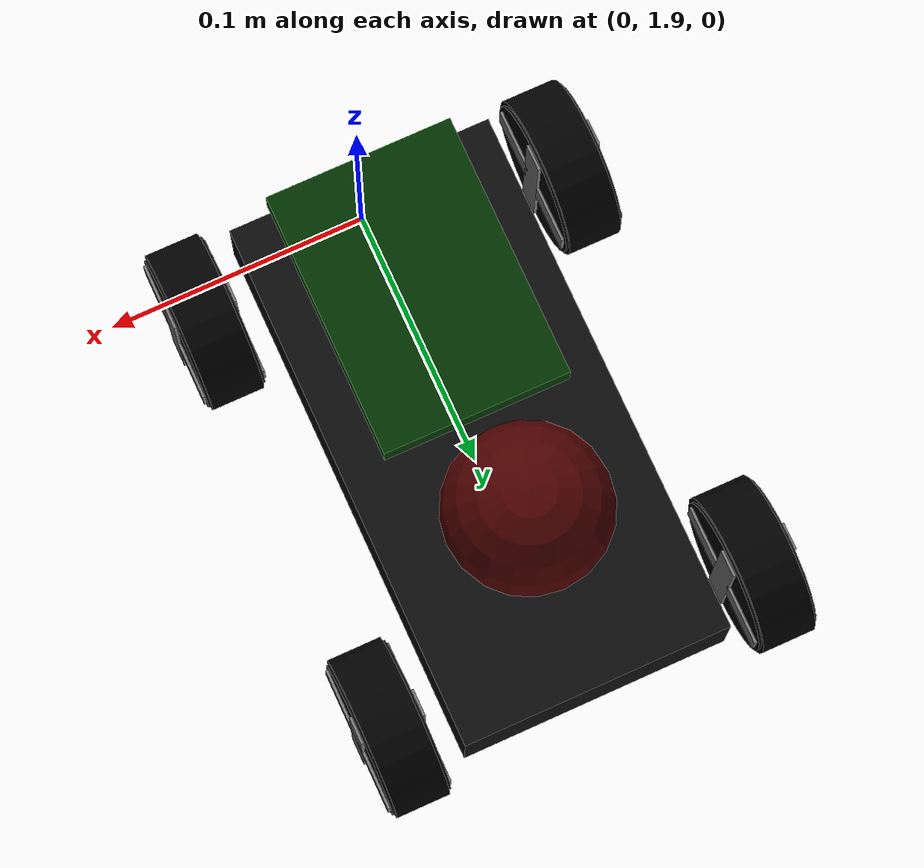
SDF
<sdf version="1.9">
 <world name="trial_1_world">
  <physics name="default_physics" default="false" type="ode">
   <max_step_size>0.0040000000000000001</max_step_size>
   <real_time_factor>1</real_time_factor>
   <real_time_update_rate>250</real_time_update_rate>
  </physics>
  <scene>
   <sky><clouds><speed>12</speed></clouds></sky>
   <ambient>0.4 0.4 0.4 1</ambient>
   <background>0.7 0.7 0.7 1</background>
   <shadows>true</shadows>
  </scene>
  <gravity>0 0 -9.8</gravity>
  <magnetic_field>6e-06 2.3e-05 -4.2e-05</magnetic_field>
  <atmosphere type="adiabatic"/>
  <model name="rover">
   <pose>-0 2 0.04 -0 0 1.57</pose>
   <link name="base_link">
    <inertial>
     <mass>0.20000000000000001</mass>
     <inertia><ixx>0.01</ixx><iyy>0.01</iyy><izz>0.01</izz><ixy>0</ixy><ixz>0</ixz><iyz>0</iyz></inertia>
    </inertial>
    <visual name="chassis_visual">
     <geometry><box><size>0.2 0.1 0.03</size></box></geometry>
     <material><diffuse>0.05 0.05 0.05 1</diffuse><specular>0.8 0.8 0.8 1</specular></material>
    </visual>
    <collision name="chassis_collision"><geometry><box><size>0.2 0.1 0.03</size></box></geometry></collision>
    <visual name="computer_visual">
     <pose>-0.05 0 0.03 0 0 0</pose>
     <geometry><box><size>0.1 0.07 0.01</size></box></geometry>
     <material><diffuse>0 0.2 0 1</diffuse><specular>0.8 0.8 0.8 1</specular></material>
    </visual>
    <collision name="computer_collision">
     <pose>-0.05 0 0.03 0 0 0</pose>
     <geometry><box><size>0.1 0.07 0.01</size></box></geometry>
    </collision>
   </link>
   <link name="front_left">
    <pose>0.08 0.07 -0.01 -1.5707 0 0</pose>
    <inertial>
     <mass>0.0050000000000000001</mass>
     <inertia><ixx>0.0001</ixx><iyy>0.0001</iyy><izz>0.0001</izz><ixy>0</ixy><ixz>0</ixz><iyz>0</iyz></inertia>
    </inertial>
    <collision name="collision">
     <geometry><cylinder><radius>0.029999999999999999</radius><length>0.02</length></cylinder></geometry>
    </collision>
    <visual name="tire">
     <geometry><cylinder><radius>0.029999999999999999</radius><length>0.02</length></cylinder></geometry>
     <material><diffuse>0 0 0 1</diffuse><specular>0.2 0.2 0.2 1</specular></material>
    </visual>
    <visual name="wheel">
     <geometry>
      <cylinder><radius>0.028499999999999998</radius><length>0.021999999999999999</length></cylinder>
     </geometry>
     <material><diffuse>0.02 0.02 0.02 1</diffuse><specular>0.8 0.8 0.8 1</specular></material>
    </visual>
    <visual name="wheel_line">
     <geometry><box><size>0.053 0.01 0.024</size></box></geometry>
     <material><diffuse>0.5 0.5 0.5 1</diffuse><specular>0.8 0.8 0.8 1</specular></material>
    </visual>
    <visual name="wheel_line2">
     <geometry><box><size>0.01 0.053 0.024</size></box></geometry>
     <material><diffuse>0.5 0.5 0.5 1</diffuse><specular>0.8 0.8 0.8 1</specular></material>
    </visual>
   </link>
   <joint name="front_left_joint" type="revolute">
    <child>front_left</child>
    <parent>base_link</parent>
    <axis>
     <xyz>0 0 1</xyz>
     <limit>
      <lower>-10000000000000000</lower>
      <upper>10000000000000000</upper>
      <effort>inf</effort>
      <velocity>inf</velocity>
      <stiffness>100000000</stiffness>
      <dissipation>1</dissipation>
     </limit>
     <dynamics>
      <spring_reference>0</spring_reference>
      <spring_stiffness>0</spring_stiffness>
      <damping>0.01</damping>
      <friction>0.01</friction>
     </dynamics>
    </axis>
   </joint>
   <link name="front_right">
    <pose>0.08 -0.07 -0.01 -1.5707 0 0</pose>
    <inertial>
     <mass>0.0050000000000000001</mass>
     <inertia><ixx>0.0001</ixx><iyy>0.0001</iyy><izz>0.0001</izz><ixy>0</ixy><ixz>0</ixz><iyz>0</iyz></inertia>
    </inertial>
    <collision name="collision">
     <geometry><cylinder><radius>0.029999999999999999</radius><length>0.02</length></cylinder></geometry>
    </collision>
    <visual name="tire">
     <geometry><cylinder><radius>0.029999999999999999</radius><length>0.02</length></cylinder></geometry>
     <material><diffuse>0 0 0 1</diffuse><specular>0.2 0.2 0.2 1</specular></material>
    </visual>
    <visual name="wheel">
     <geometry>
      <cylinder><radius>0.028499999999999998</radius><length>0.021999999999999999</length></cylinder>
     </geometry>
     <material><diffuse>0.02 0.02 0.02 1</diffuse><specular>0.8 0.8 0.8 1</specular></material>
    </visual>
    <visual name="wheel_line">
     <geometry><box><size>0.053 0.01 0.024</size></box></geometry>
     <material><diffuse>0.5 0.5 0.5 1</diffuse><specular>0.8 0.8 0.8 1</specular></material>
    </visual>
    <visual name="wheel_line2">
     <geometry><box><size>0.01 0.053 0.024</size></box></geometry>
     <material><diffuse>0.5 0.5 0.5 1</diffuse><specular>0.8 0.8 0.8 1</specular></material>
    </visual>
   </link>
   <joint name="front_right_joint" type="revolute">
    <child>front_right</child>
    <parent>base_link</parent>
    <axis>
     <xyz>0 0 1</xyz>
     <limit>
      <lower>-10000000000000000</lower>
      <upper>10000000000000000</upper>
      <effort>inf</effort>
      <velocity>inf</velocity>
      <stiffness>100000000</stiffness>
      <dissipation>1</dissipation>
     </limit>
     <dynamics>
      <spring_reference>0</spring_reference>
      <spring_stiffness>0</spring_stiffness>
      <damping>0.01</damping>
      <friction>0.01</friction>
     </dynamics>
    </axis>
   </joint>
   <link name="rear_left">
    <pose>-0.08 0.07 -0.01 -1.5707 0 0</pose>
    <inertial>
     <mass>0.0050000000000000001</mass>
     <inertia><ixx>0.0001</ixx><iyy>0.0001</iyy><izz>0.0001</izz><ixy>0</ixy><ixz>0</ixz><iyz>0</iyz></inertia>
    </inertial>
    <collision name="collision">
     <geometry><cylinder><radius>0.029999999999999999</radius><length>0.02</length></cylinder></geometry>
    </collision>
    <visual name="tire">
     <geometry><cylinder><radius>0.029999999999999999</radius><length>0.02</length></cylinder></geometry>
     <material><diffuse>0 0 0 1</diffuse><specular>0.2 0.2 0.2 1</specular></material>
    </visual>
    <visual name="wheel">
     <geometry>
      <cylinder><radius>0.028499999999999998</radius><length>0.021999999999999999</length></cylinder>
     </geometry>
     <material><diffuse>0.02 0.02 0.02 1</diffuse><specular>0.8 0.8 0.8 1</specular></material>
    </visual>
    <visual name="wheel_line">
     <geometry><box><size>0.053 0.01 0.024</size></box></geometry>
     <material><diffuse>0.5 0.5 0.5 1</diffuse><specular>0.8 0.8 0.8 1</specular></material>
    </visual>
    <visual name="wheel_line2">
     <geometry><box><size>0.01 0.053 0.024</size></box></geometry>
     <material><diffuse>0.5 0.5 0.5 1</diffuse><specular>0.8 0.8 0.8 1</specular></material>
    </visual>
   </link>
   <joint name="rear_left_joint" type="revolute">
    <child>rear_left</child>
    <parent>base_link</parent>
    <axis>
     <xyz>0 0 1</xyz>
     <limit>
      <lower>-10000000000000000</lower>
      <upper>10000000000000000</upper>
      <effort>inf</effort>
      <velocity>inf</velocity>
      <stiffness>100000000</stiffness>
      <dissipation>1</dissipation>
     </limit>
     <dynamics>
      <spring_reference>0</spring_reference>
      <spring_stiffness>0</spring_stiffness>
      <damping>0.01</damping>
      <friction>0.01</friction>
     </dynamics>
    </axis>
   </joint>
   <link name="rear_right">
    <pose>-0.08 -0.07 -0.01 -1.5707 0 0</pose>
    <inertial>
     <mass>0.0050000000000000001</mass>
     <inertia><ixx>0.0001</ixx><iyy>0.0001</iyy><izz>0.0001</izz><ixy>0</ixy><ixz>0</ixz><iyz>0</iyz></inertia>
    </inertial>
    <collision name="collision">
     <geometry><cylinder><radius>0.029999999999999999</radius><length>0.02</length></cylinder></geometry>
    </collision>
    <visual name="tire">
     <geometry><cylinder><radius>0.029999999999999999</radius><length>0.02</length></cylinder></geometry>
     <material><diffuse>0 0 0 1</diffuse><specular>0.2 0.2 0.2 1</specular></material>
    </visual>
    <visual name="wheel">
     <geometry>
      <cylinder><radius>0.028499999999999998</radius><length>0.021999999999999999</length></cylinder>
     </geometry>
     <material><diffuse>0.02 0.02 0.02 1</diffuse><specular>0.8 0.8 0.8 1</specular></material>
    </visual>
    <visual name="wheel_line">
     <geometry><box><size>0.053 0.01 0.024</size></box></geometry>
     <material><diffuse>0.5 0.5 0.5 1</diffuse><specular>0.8 0.8 0.8 1</specular></material>
    </visual>
    <visual name="wheel_line2">
     <geometry><box><size>0.01 0.053 0.024</size></box></geometry>
     <material><diffuse>0.5 0.5 0.5 1</diffuse><specular>0.8 0.8 0.8 1</specular></material>
    </visual>
   </link>
   <joint name="rear_right_joint" type="revolute">
    <child>rear_right</child>
    <parent>base_link</parent>
    <axis>
     <xyz>0 0 1</xyz>
     <limit>
      <lower>-10000000000000000</lower>
      <upper>10000000000000000</upper>
      <effort>inf</effort>
      <velocity>inf</velocity>
      <stiffness>100000000</stiffness>
      <dissipation>1</dissipation>
     </limit>
     <dynamics>
      <spring_reference>0</spring_reference>
      <spring_stiffness>0</spring_stiffness>
      <damping>0.01</damping>
      <friction>0.01</friction>
     </dynamics>
    </axis>
   </joint>
   <include><uri>model://red_ball</uri></include>
   <joint name="red_ball_joint" type="fixed">
    <pose>-0.04 0 0.02 0 -0 0</pose>
    <child>red_ball::link</child>
    <parent>base_link</parent>
   </joint>
   <plugin name="p3d" filename="libgazebo_ros_p3d.so">
    <robotNamespace>rover</robotNamespace>
    <updateRate>10</updateRate>
    <bodyName>base_link</bodyName>
    <topicName>/qualisys/rover/odom</topicName>
    <frameName>map</frameName>
    <xyzOffset>0 0 0</xyzOffset>
    <rpyOffset>0 0 0</rpyOffset>
   </plugin>
   <plugin name="skid_steer_drive_controller" filename="libgazebo_ros_skid_steer_drive.so">
    <robotNamespace>rover</robotNamespace>
    <updateRate>100.0</updateRate>
    <leftFrontJoint>front_left_joint</leftFrontJoint>
    <rightFrontJoint>front_right_joint</rightFrontJoint>
    <leftRearJoint>rear_left_joint</leftRearJoint>
    <rightRearJoint>rear_right_joint</rightRearJoint>
    <wheelSeparation>0.14</wheelSeparation>
    <wheelDiameter>0.06</wheelDiameter>
    <robotBaseFrame>rover_ground_truth</robotBaseFrame>
    <torque>0.3</torque>
    <broadcastTF>false</broadcastTF>
    <commandTopic>cmd_vel</commandTopic>
    <odometryTopic>odom</odometryTopic>
    <odometryFrame>map</odometryFrame>
    <covariance_x>0.0001</covariance_x>
    <covariance_y>0.0001</covariance_y>
    <covariance_yaw>0.0001</covariance_yaw>
   </plugin>
   <static>false</static>
  </model>
  <include>
   <uri>file:///home/docker/ws/install/auav_f22_gazebo/share/auav_f22_gazebo/models/hangar_floor</uri>
   <name>hangar_floor</name>
   <pose>0 8 0 0 -0 0</pose>
  </include>
  <light name="light0" type="point">
   <pose>-12 -4 15 0 -0 0</pose>
   <intensity>1</intensity>
   <direction>0 0 -1</direction>
   <diffuse>1 1 1 1</diffuse>
   <specular>1 1 1 1</specular>
   <attenuation>
    <range>100</range>
    <linear>0.10000000000000001</linear>
    <constant>1</constant>
    <quadratic>0</quadratic>
   </attenuation>
   <spot><inner_angle>0</inner_angle><outer_angle>0</outer_angle><falloff>0</falloff></spot>
  </light>
  <light name="light1" type="point">
   <pose>-12 8 15 0 -0 0</pose>
   <intensity>1</intensity>
   <direction>0 0 -1</direction>
   <diffuse>1 1 1 1</diffuse>
   <specular>1 1 1 1</specular>
   <attenuation>
    <range>100</range>
    <linear>0.10000000000000001</linear>
    <constant>1</constant>
    <quadratic>0</quadratic>
   </attenuation>
   <spot><inner_angle>0</inner_angle><outer_angle>0</outer_angle><falloff>0</falloff></spot>
  </light>
  <light name="light2" type="point">
   <pose>-12 20 15 0 -0 0</pose>
   <intensity>1</intensity>
   <direction>0 0 -1</direction>
   <diffuse>1 1 1 1</diffuse>
   <specular>1 1 1 1</specular>
   <attenuation>
    <range>100</range>
    <linear>0.10000000000000001</linear>
    <constant>1</constant>
    <quadratic>0</quadratic>
   </attenuation>
   <spot><inner_angle>0</inner_angle><outer_angle>0</outer_angle><falloff>0</falloff></spot>
  </light>
  <light name="light3" type="point">
   <pose>0 -4 15 0 -0 0</pose>
   <intensity>1</intensity>
   <direction>0 0 -1</direction>
   <diffuse>1 1 1 1</diffuse>
   <specular>1 1 1 1</specular>
   <attenuation>
    <range>100</range>
    <linear>0.10000000000000001</linear>
    <constant>1</constant>
    <quadratic>0</quadratic>
   </attenuation>
   <spot><inner_angle>0</inner_angle><outer_angle>0</outer_angle><falloff>0</falloff></spot>
  </light>
  <light name="light4" type="point">
   <pose>0 8 15 0 -0 0</pose>
   <intensity>1</intensity>
   <direction>0 0 -1</direction>
   <diffuse>1 1 1 1</diffuse>
   <specular>1 1 1 1</specular>
   <attenuation>
    <range>100</range>
    <linear>0.10000000000000001</linear>
    <constant>1</constant>
    <quadratic>0</quadratic>
   </attenuation>
   <spot><inner_angle>0</inner_angle><outer_angle>0</outer_angle><falloff>0</falloff></spot>
  </light>
  <light name="light5" type="point">
   <pose>0 20 15 0 -0 0</pose>
   <intensity>1</intensity>
   <direction>0 0 -1</direction>
   <diffuse>1 1 1 1</diffuse>
   <specular>1 1 1 1</specular>
   <attenuation>
    <range>100</range>
    <linear>0.10000000000000001</linear>
    <constant>1</constant>
    <quadratic>0</quadratic>
   </attenuation>
   <spot><inner_angle>0</inner_angle><outer_angle>0</outer_angle><falloff>0</falloff></spot>
  </light>
  <light name="light6" type="point">
   <pose>12 -4 15 0 -0 0</pose>
   <intensity>1</intensity>
   <direction>0 0 -1</direction>
   <diffuse>1 1 1 1</diffuse>
   <specular>1 1 1 1</specular>
   <attenuation>
    <range>100</range>
    <linear>0.10000000000000001</linear>
    <constant>1</constant>
    <quadratic>0</quadratic>
   </attenuation>
   <spot><inner_angle>0</inner_angle><outer_angle>0</outer_angle><falloff>0</falloff></spot>
  </light>
  <light name="light7" type="point">
   <pose>12 8 15 0 -0 0</pose>
   <intensity>1</intensity>
   <direction>0 0 -1</direction>
   <diffuse>1 1 1 1</diffuse>
   <specular>1 1 1 1</specular>
   <attenuation>
    <range>100</range>
    <linear>0.10000000000000001</linear>
    <constant>1</constant>
    <quadratic>0</quadratic>
   </attenuation>
   <spot><inner_angle>0</inner_angle><outer_angle>0</outer_angle><falloff>0</falloff></spot>
  </light>
  <light name="light8" type="point">
   <pose>12 20 15 0 -0 0</pose>
   <intensity>1</intensity>
   <direction>0 0 -1</direction>
   <diffuse>1 1 1 1</diffuse>
   <specular>1 1 1 1</specular>
   <attenuation>
    <range>100</range>
    <linear>0.10000000000000001</linear>
    <constant>1</constant>
    <quadratic>0</quadratic>
   </attenuation>
   <spot><inner_angle>0</inner_angle><outer_angle>0</outer_angle><falloff>0</falloff></spot>
  </light>
 </world>
</sdf>

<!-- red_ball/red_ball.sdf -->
<sdf version="1.7">
  <model name='red_ball'>
    <link name='link'>
      <pose>0.04 0 0.05 0 0 0</pose>
      <inertial>
        <mass>0.001</mass>
        <inertia>
          <ixx>0.0001</ixx>
          <iyy>0.0001</iyy>
          <izz>0.0001</izz>
        </inertia>
      </inertial>
      <visual name="ball_visual">
        <geometry>
          <sphere>
            <radius>0.03</radius>
          </sphere>
        </geometry>
        <material>
          <ambient>0.3 0 0 1</ambient>
          <diffuse>0.3 0 0 1</diffuse>
          <specular>0.8 0.8 0.8 1</specular>
        </material>
      </visual>
      <collision name="ball_collision">
        <geometry>
          <sphere>
            <radius>0.03</radius>
          </sphere>
        </geometry>
      </collision>
    </link>
  </model>
</sdf>
<!-- vim: set et fenc=utf-8 ff=unix sts=0 sw=2 ts=2 : -->

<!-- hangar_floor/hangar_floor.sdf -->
<sdf version="1.7">
  <model name="hangar_floor">
        <pose>0 0 0 0 0 0</pose>
    <static>true</static>
    <link name='link'>
      <visual name='visual'>
        <pose>0 0 0.001 0 0 0</pose>
        <geometry>
          <mesh>
            <uri>model://hangar_floor/meshes/hangar_floor.dae</uri>
          </mesh>
        </geometry>
        <material>
          <diffuse>1 1 1</diffuse>
          <specular>0.05 0.05 0.05 1</specular>
          <pbr>
            <metal>
              <albedo_map>model://hangar_floor/meshes/textures/hangar_floor_albedo.png</albedo_map>
              <roughness_map>model://hangar_floor/meshes/textures/hangar_floor_roughness.png</roughness_map>
              <normal_map>model://hangar_floor/meshes/textures/hangar_floor_normal.png</normal_map>
            </metal>
          </pbr>
        </material>
      </visual>
      <collision name='collision'>
        <geometry>
          <plane>
            <size>20 20</size>
          </plane>
        </geometry>
      </collision>
    </link>
  </model>
</sdf>
